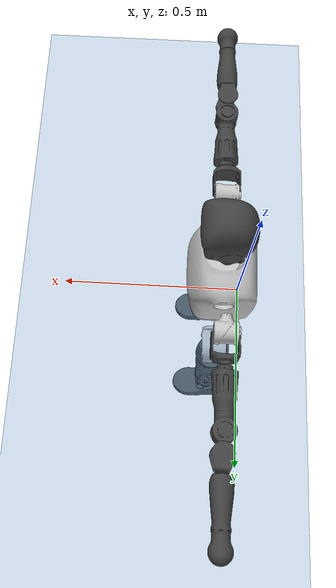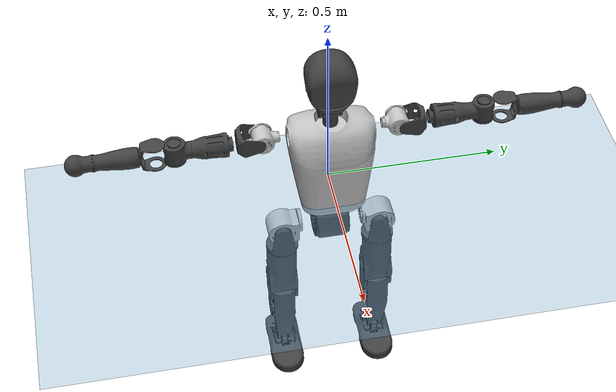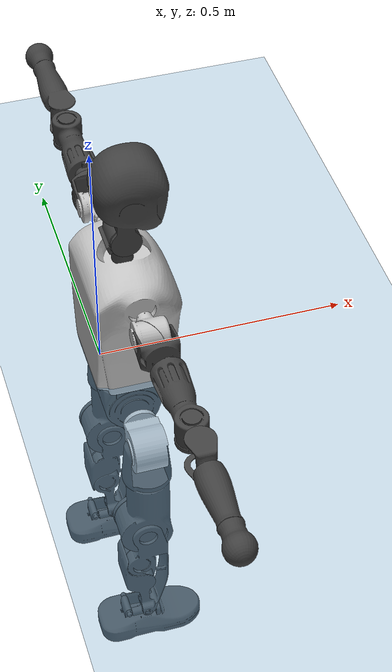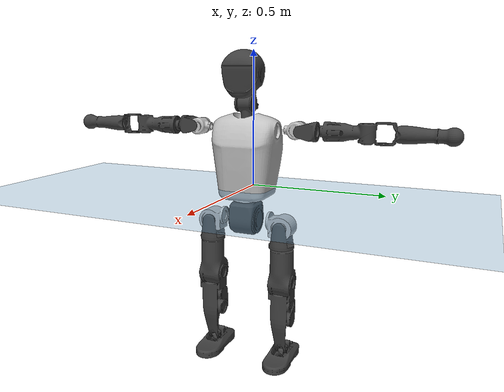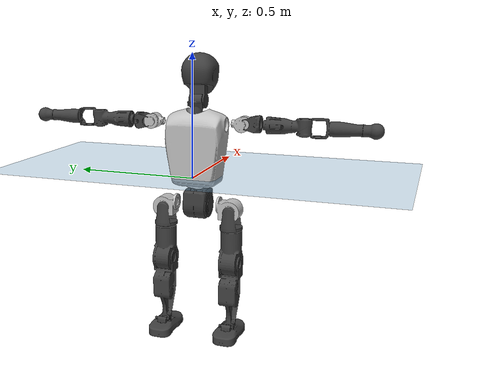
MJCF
<mujoco model="T1">
  <compiler angle="radian" assetdir="assets" balanceinertia="true" inertiafromgeom="false"/>

  <option timestep="0.005" density="1.2" viscosity="2e-05"/>

  <size nkey="1"/>

  <visual>
    <quality shadowsize="8192"/>
    <map shadowclip="0.5"/>
  </visual>

  <default>
    <default class="/">
      <joint armature="0.01" damping="0.01" frictionloss="0.1"/>
      <geom contype="0" conaffinity="0" group="1" solref="-1000 -80"/>
      <site size="0.01 0.005 0.005" group="5"/>
      <general forcelimited="true" biastype="affine" gainprm="25" biasprm="0 -25 -0.6"/>
      <default class="t1">
        <geom rgba="0.25 0.25 0.25 1"/>
        <default class="visual">
          <geom type="mesh" group="2"/>
        </default>
        <default class="collision">
          <geom group="3"/>
        </default>
        <default class="foot">
          <geom size="0.1115 0.05 0.015" type="box" condim="6" group="4" priority="1" solimp="0.015 1 0.015"/>
        </default>
        <default class="reward_collision_sphere">
          <geom group="5" rgba="1 0 0 1"/>
        </default>
      </default>
    </default>
  </default>

  <asset>
    <texture type="skybox" colorspace="auto" name="//unnamed_texture_0" builtin="gradient" rgb1="0.95 0.95 0.95" rgb2="0.95 0.95 0.95" width="100" height="600"/>
    <texture type="2d" colorspace="auto" name="texplane" builtin="checker" rgb1="0.345 0.575 0.748" rgb2="0.345 0.575 0.748" markrgb="1 1 1" width="512" height="512"/>
    <material name="MatPlane" class="/" texture="texplane" texuniform="true" texrepeat="2 2" specular="0.9"/>
    <mesh name="Trunk" class="/" file="Trunk.stl"/>
    <mesh name="H1" class="/" file="H1.stl"/>
    <mesh name="H2" class="/" file="H2.stl"/>
    <mesh name="AL1" class="/" file="AL1.stl"/>
    <mesh name="AL2" class="/" file="AL2.stl"/>
    <mesh name="AL3" class="/" file="AL3.stl"/>
    <mesh name="left_hand_link" class="/" file="left_hand_link.stl"/>
    <mesh name="AR1" class="/" file="AR1.stl"/>
    <mesh name="AR2" class="/" file="AR2.stl"/>
    <mesh name="AR3" class="/" file="AR3.stl"/>
    <mesh name="right_hand_link" class="/" file="right_hand_link.stl"/>
    <mesh name="Waist" class="/" file="Waist.stl"/>
    <mesh name="Hip_Pitch_Left" class="/" file="Hip_Pitch_Left.stl"/>
    <mesh name="Hip_Roll_Left" class="/" file="Hip_Roll_Left.stl"/>
    <mesh name="Hip_Yaw_Left" class="/" file="Hip_Yaw_Left.stl"/>
    <mesh name="Shank_Left" class="/" file="Shank_Left.stl"/>
    <mesh name="Ankle_Cross_Left" class="/" file="Ankle_Cross_Left.stl"/>
    <mesh name="left_foot_link" class="/" file="left_foot_link.stl"/>
    <mesh name="Hip_Pitch_Right" class="/" file="Hip_Pitch_Right.stl"/>
    <mesh name="Hip_Roll_Right" class="/" file="Hip_Roll_Right.stl"/>
    <mesh name="Hip_Yaw_Right" class="/" file="Hip_Yaw_Right.stl"/>
    <mesh name="Shank_Right" class="/" file="Shank_Right.stl"/>
    <mesh name="Ankle_Cross_Right" class="/" file="Ankle_Cross_Right.stl"/>
    <mesh name="right_foot_link" class="/" file="right_foot_link.stl"/>
  </asset>

  <worldbody>
    <geom name="floor" class="/" size="100 100 0.125" type="plane" group="0" material="MatPlane"/>
    <light name="toplight_shadow" class="/" pos="0 0 5" dir="0.0990148 0.0990148 -0.990148" type="directional" ambient="0.04 0.04 0.04" diffuse="0.55 0.55 0.55" specular="0.12 0.12 0.12"/>
    <light name="toplight_fill" class="/" pos="0 0 5" dir="0.0990148 0.0990148 -0.990148" type="directional" castshadow="false" ambient="0.04 0.04 0.04" diffuse="0.3 0.3 0.3" specular="0.08 0.08 0.08"/>
    <body name="trunk" childclass="t1" pos="-5.66402e-05 -0.00269684 -0.00258611" quat="1 0.000396011 0.000273969 -5.39473e-06">
      <inertial pos="0.051115 -0.00146997 0.108185" quat="0.999969 -0.00117162 -0.00170188 0.00756236" mass="14.7543" diaginertia="0.050902 0.354953 0.0602157"/>
      <joint name="//unnamed_joint_0" type="free" armature="0" damping="0" frictionloss="0"/>
      <geom name="//unnamed_geom_1" class="visual" rgba="0.76 0.76 0.76 1" mesh="Trunk"/>
      <geom name="//unnamed_geom_2" class="collision" size="0.0823238 0.109765 0.164648" pos="0.053742 0 0.123447" type="box"/>
      <geom name="//unnamed_geom_3" class="reward_collision_sphere" size="0.12623" pos="0.053742 0 0.102872"/>
      <geom name="//unnamed_geom_4" class="reward_collision_sphere" size="0.0164648" pos="0.053742 0.116325 0"/>
      <geom name="//unnamed_geom_5" class="reward_collision_sphere" size="0.0164648" pos="0.053742 -0.116325 0"/>
      <geom name="//unnamed_geom_6" class="reward_collision_sphere" size="0.0164648" pos="0.053742 0.146433 0.18517"/>
      <geom name="//unnamed_geom_7" class="reward_collision_sphere" size="0.0164648" pos="0.053742 -0.146433 0.18517"/>
      <site name="imu" pos="-0.0125789 -0.0136877 0.0107532" size="0.0109765"/>
      <camera name="track" pos="0 -2.73706 0" quat="0.707107 0.707107 0 0" mode="trackcom"/>
      <camera name="ego_camera" pos="0.109275 0 0.432064" quat="-0.5 -0.5 0.5 0.5"/>
      <body name="H1" pos="0.0525004 -0.000683014 0.250092" quat="1 4.10936e-06 1.45426e-05 1.7345e-06">
        <inertial pos="-0.00049183 -0.00351438 0.0577872" quat="0.762839 -0.0126124 0.00242714 0.646461" mass="0.581607" diaginertia="0.000141381 0.00105783 0.000170597"/>
        <joint name="AAHead_yaw" pos="0 0 0" axis="-0.0110164 -0.00709835 0.999914" range="-1.57081 1.57236" armature="0.0113879" damping="0.0197099" frictionloss="0.120494"/>
        <geom name="//unnamed_geom_8" class="visual" mesh="H1"/>
        <body name="H2" pos="0.00103525 -0.0028265 0.0625314" quat="1 0.000120996 -0.000277742 -0.000175359">
          <inertial pos="0.00353956 0.00191207 0.0988882" quat="0.988259 0.107995 -0.074683 -0.0781278" mass="0.830324" diaginertia="0.00117301 0.00917537 0.00200281"/>
          <joint name="Head_pitch" pos="0 0 0" axis="0.0055287 -0.999965 0.00620243" range="-1.20483 0.342595" armature="0.0110722" damping="0.00928192" frictionloss="0.0978462"/>
          <geom name="//unnamed_geom_9" class="visual" mesh="H2"/>
          <geom name="//unnamed_geom_10" class="collision" size="0.0878121" pos="0.008957 0 0.11316"/>
          <geom name="//unnamed_geom_11" class="reward_collision_sphere" size="0.0987886" pos="0.017914 0 0.102872"/>
        </body>
      </body>
      <body name="AL1" pos="0.0500786 0.145333 0.222889" quat="1 2.08501e-05 0.000422805 -7.51235e-06">
        <inertial pos="-0.000682596 0.0586505 -0.00295219" quat="0.503038 0.495322 -0.50599 0.495564" mass="0.710064" diaginertia="0.000815481 0.00620043 0.00033581"/>
        <joint name="Left_Shoulder_Pitch" pos="0 0 0" axis="-0.000898668 0.999997 -0.00209213" range="-3.26777 1.23527" armature="0.0109927" damping="0" frictionloss="0.109232"/>
        <geom name="//unnamed_geom_12" class="visual" rgba="0.76 0.76 0.76 1" mesh="AL1"/>
        <body name="AL2" pos="0.00132735 0.0652684 -0.00212801" quat="1 -0.000959914 1.66334e-06 0.000143739">
          <inertial pos="0.00326983 0.0506605 0.00246283" quat="0.481605 0.510979 -0.489861 0.516715" mass="0.217647" diaginertia="0.00022708 0.00164919 0.000202143"/>
          <joint name="Left_Shoulder_Roll" pos="0 0 0" axis="-0.999998 0.0016245 0.000810456" range="-1.5753 1.73343" armature="0.0122665" damping="0.0086179" frictionloss="0.100756"/>
          <geom name="//unnamed_geom_13" class="visual" mesh="AL2"/>
          <body name="AL3" pos="-5.89897e-06 0.0811433 0.00296168" quat="1 -0.000438521 0.000128129 -0.000216427">
            <inertial pos="0.00050074 0.116129 -0.00255741" quat="0.70143 0.712695 0.00090508 -0.00783533" mass="1.39143" diaginertia="0.00729148 0.0632317 0.000744822"/>
            <joint name="Left_Elbow_Pitch" pos="0 0 0" axis="0.0080878 -0.999914 -0.0103627" stiffness="0.00896397" range="-2.2534 2.2623" armature="0.0103214" damping="0.0205096" frictionloss="0.114933"/>
            <geom name="//unnamed_geom_14" class="visual" mesh="AL3"/>
            <geom name="//unnamed_geom_15" class="collision" size="0.0329295 0.0823238" pos="0 0.0684265 0" quat="0.707105 0.707108 0 0" type="cylinder"/>
            <geom name="//unnamed_geom_16" class="reward_collision_sphere" size="0.0395154"/>
            <body name="left_hand_link" pos="0.00289767 0.201186 0.00103476" quat="1 8.09169e-05 -0.000501753 -9.04545e-05">
              <inertial pos="-0.00055554 0.14956 0.000115038" quat="0.703951 0.710171 -0.0103458 0.0016653" mass="0.438337" diaginertia="0.00464423 0.0394827 0.000245536"/>
              <joint name="Left_Elbow_Yaw" pos="0 0 0" axis="0.0045794 0.00835253 0.999955" range="-2.43691 0.0146399" armature="0.010801" damping="0.0178358" frictionloss="0.11647"/>
              <geom name="//unnamed_geom_17" class="visual" mesh="left_hand_link"/>
              <geom name="//unnamed_geom_18" class="collision" size="0.0329295 0.0960444" pos="0 0.177909 0" quat="0.707105 0.707108 0 0" type="cylinder"/>
              <geom name="//unnamed_geom_19" class="reward_collision_sphere" size="0.0548825"/>
              <geom name="//unnamed_geom_20" class="reward_collision_sphere" size="0.0384178" pos="0 0.150538 0"/>
              <geom name="//unnamed_geom_21" class="reward_collision_sphere" size="0.0384178" pos="0 0.294234 0"/>
            </body>
          </body>
        </body>
      </body>
      <body name="AR1" pos="0.0546007 -0.145005 0.225549" quat="1 0.000346929 -0.000267183 0.000621256">
        <inertial pos="-0.003167 -0.0617261 0.000361191" quat="0.504828 0.496957 -0.50357 0.49457" mass="0.7309" diaginertia="0.000816886 0.00664114 0.000357165"/>
        <joint name="Right_Shoulder_Pitch" pos="0 0 0" axis="0.0075695 -0.999961 0.00444201" stiffness="0.00118941" range="-1.22913 3.32773" armature="0.0111661" damping="0.00779566" frictionloss="0.114521"/>
        <geom name="//unnamed_geom_22" class="visual" rgba="0.76 0.76 0.76 1" mesh="AR1"/>
        <body name="AR2" pos="0.00119488 -0.063048 0.00279897" quat="1 0.000348996 0.000251584 0.000214647">
          <inertial pos="0.000816911 -0.0503322 0.0017499" quat="0.510229 0.488656 -0.511461 0.489172" mass="0.217993" diaginertia="0.000246182 0.00172739 0.000216159"/>
          <joint name="Right_Shoulder_Roll" pos="0 0 0" axis="-1 -0.000311823 -0.000416854" range="-1.73013 1.58696" armature="0.0110941" damping="0.014953" frictionloss="0.121658"/>
          <geom name="//unnamed_geom_23" class="visual" mesh="AR2"/>
          <body name="AR3" pos="0.00316428 -0.0803031 -0.00292987" quat="0.999999 0.000753261 -0.000258896 0.000994588">
            <inertial pos="0.00224618 -0.116793 -0.0018306" quat="0.712732 0.701386 0.00697503 -0.00470818" mass="1.39557" diaginertia="0.00763285 0.0642602 0.000713186"/>
            <joint name="Right_Elbow_Pitch" pos="0 0 0" axis="-0.00116967 0.999913 0.0131475" range="-2.28393 2.3168" armature="0.0106682" damping="0.0128895" frictionloss="0.117835"/>
            <geom name="//unnamed_geom_24" class="visual" mesh="AR3"/>
            <geom name="//unnamed_geom_25" class="collision" size="0.0329295 0.0823238" pos="0 -0.0684265 0" quat="0.707105 0.707108 0 0" type="cylinder"/>
            <geom name="//unnamed_geom_26" class="reward_collision_sphere" size="0.0395154"/>
            <body name="right_hand_link" pos="-0.000582918 -0.200275 -0.00141664" quat="0.999999 -0.000838599 0.000367569 0.000597737">
              <inertial pos="-0.000615674 -0.148027 0.00330742" quat="0.711397 0.702771 0.00488388 0.00156059" mass="0.433579" diaginertia="0.00495473 0.0411727 0.00024685"/>
              <joint name="Right_Elbow_Yaw" pos="0 0 0" axis="-3.81864e-05 -0.00223637 0.999997" range="0.0398875 2.45786" armature="0.011151" damping="0.00786936" frictionloss="0.106759"/>
              <geom name="//unnamed_geom_27" class="visual" mesh="right_hand_link"/>
              <geom name="//unnamed_geom_28" class="collision" size="0.0329295 0.0960444" pos="0 -0.177909 0" quat="0.707105 0.707108 0 0" type="cylinder"/>
              <geom name="//unnamed_geom_29" class="reward_collision_sphere" size="0.0548825"/>
              <geom name="//unnamed_geom_30" class="reward_collision_sphere" size="0.0384178" pos="0 -0.150538 0"/>
              <geom name="//unnamed_geom_31" class="reward_collision_sphere" size="0.0384178" pos="0 -0.294234 0"/>
            </body>
          </body>
        </body>
      </body>
      <body name="Waist" pos="0.0533121 -0.00295371 -0.1169" quat="0.999999 -0.000964422 -0.000260277 0.00085296">
        <inertial pos="0.00415496 0.00144826 0.0090292" quat="0.983729 -0.000400848 -0.179627 0.00332674" mass="3.24488" diaginertia="0.00305197 0.0249027 0.00547226"/>
        <joint name="Waist" pos="0 0 0" axis="-0.00798858 0.0113288 0.999904" range="-1.62101 1.56137" armature="0.0119248" damping="0.0230181" frictionloss="0.111453"/>
        <geom name="//unnamed_geom_32" class="visual" mesh="Waist"/>
        <body name="Hip_Pitch_Left" pos="0.00134925 0.147047 0.000813725" quat="1 8.30987e-05 0.00088958 -0.000205477">
          <inertial pos="0.000917935 -0.0089248 -0.0167967" quat="0.975001 0.221231 0.0149916 0.0143079" mass="1.33092" diaginertia="0.00103977 0.00713373 0.00143272"/>
          <joint name="Left_Hip_Pitch" pos="0 0 0" axis="-0.00161579 0.999986 0.00505635" stiffness="0.00967361" range="-1.80816 1.56329" armature="0.0105663" damping="0.0237623" frictionloss="0.124429"/>
          <geom name="//unnamed_geom_33" class="visual" rgba="0.76 0.76 0.76 1" mesh="Hip_Pitch_Left"/>
          <body name="Hip_Roll_Left" pos="-0.000711589 -0.00300096 -0.021988" quat="1 0.00037029 7.80179e-05 -0.000169471">
            <inertial pos="-0.00174842 -0.000670522 -0.0524249" quat="0.708656 -0.00553549 -0.00161632 0.705531" mass="0.531633" diaginertia="0.00102544 0.00777508 0.000614799"/>
            <joint name="Left_Hip_Roll" pos="0 0 0" axis="-0.999997 -0.000595367 -0.00220154" range="-1.56901 0.234252" armature="0.010848" damping="0" frictionloss="0.0958842"/>
            <geom name="//unnamed_geom_34" class="visual" mesh="Hip_Roll_Left"/>
            <geom name="//unnamed_geom_35" class="reward_collision_sphere" size="0.0603708"/>
            <body name="Hip_Yaw_Left" pos="-0.00220499 0.00101864 -0.0867237" quat="1 -0.000357213 0.000215543 0.000307844">
              <inertial pos="-0.00693448 0.00240301 -0.0933656" quat="0.697558 -0.032662 -0.0303744 0.715139" mass="2.81589" diaginertia="0.0150824 0.123945 0.00303955"/>
              <joint name="Left_Hip_Yaw" pos="0 0 0" axis="-0.000909193 -0.00233021 -0.999997" range="-1.0573 1.00725" armature="0.0105686" damping="0" frictionloss="0.110261"/>
              <geom name="//unnamed_geom_36" class="visual" mesh="Hip_Yaw_Left"/>
              <geom name="//unnamed_geom_37" class="collision" size="0.0548825 0.0878121" type="cylinder"/>
              <body name="Shank_Left" pos="-0.0139575 7.2454e-05 -0.134097" quat="1 8.90464e-05 -0.000195983 -4.0032e-05">
                <inertial pos="-0.00700155 0.00101675 -0.127746" quat="0.997628 0.00261819 -0.0234336 0.0646642" mass="2.36893" diaginertia="0.0203194 0.166719 0.00222256"/>
                <joint name="Left_Knee_Pitch" pos="0 0 0" axis="0.00959604 0.999936 -0.00600109" stiffness="0.00794947" range="0.0525429 2.28358" armature="0.0107947" damping="0.013973" frictionloss="0.0995214"/>
                <geom name="//unnamed_geom_38" class="visual" mesh="Shank_Left"/>
                <geom name="//unnamed_geom_39" class="collision" size="0.0548825 0.0823238" pos="0 0 -0.123447" type="cylinder"/>
                <geom name="//unnamed_geom_40" class="reward_collision_sphere" size="0.0713473"/>
                <body name="Ankle_Cross_Left" pos="0.00216279 0.000417054 -0.288169" quat="1 -4.10073e-06 -0.000245016 -8.51282e-05">
                  <inertial pos="-0.00592061 0.00169506 -0.0056572" quat="0.444353 0.545914 0.555961 0.442081" mass="0.0977533" diaginertia="1.68264e-05 0.000119453 1.30209e-05"/>
                  <joint name="Left_Ankle_Pitch" pos="0 0 0" axis="6.42275e-05 1 -0.000147221" range="-0.876336 0.375598" armature="0.00965618" damping="0" frictionloss="0.123108"/>
                  <geom name="//unnamed_geom_41" class="visual" mesh="Ankle_Cross_Left"/>
                  <body name="left_foot_link" pos="-0.00414766 -0.00180039 -0.0136358" quat="0.999999 -2.71423e-05 -0.00130839 0.000128168">
                    <inertial pos="-0.00169122 -0.000310481 -0.0102746" quat="0.00839087 0.623664 0.00822162 0.781604" mass="0.894865" diaginertia="0.00154609 0.0117392 0.00244916"/>
                    <joint name="Left_Ankle_Roll" pos="0 0 0" axis="-0.999992 -0.000127061 0.00396346" range="-0.443546 0.43949" armature="0.0111668" damping="0" frictionloss="0.108162"/>
                    <geom name="//unnamed_geom_42" class="visual" mesh="left_foot_link"/>
                    <geom name="left_foot" class="foot" size="0.119708 0.0469753 0.0158992" pos="0.008957 0 -0.0154308"/>
                    <geom name="//unnamed_geom_44" class="reward_collision_sphere" size="0.0570778" pos="0.008957 0 -0.0154308"/>
                    <geom name="//unnamed_geom_45" class="reward_collision_sphere" size="0.0329295" pos="0.0850915 -0.0314762 -0.0154308"/>
                    <geom name="//unnamed_geom_46" class="reward_collision_sphere" size="0.0329295" pos="-0.062699 -0.0314762 -0.0154308"/>
                    <site name="left_foot" class="foot" pos="0.008957 0 -0.0154308" size="0.0109765"/>
                  </body>
                </body>
              </body>
            </body>
          </body>
        </body>
        <body name="Hip_Pitch_Right" pos="-0.00017675 -0.142708 0.00264208" quat="1 9.50217e-05 3.89809e-05 1.96505e-05">
          <inertial pos="-0.000721087 0.0077792 -0.0180841" quat="0.970927 -0.238904 0.012439 -0.00843318" mass="1.37756" diaginertia="0.00106323 0.00698937 0.00150824"/>
          <joint name="Right_Hip_Pitch" pos="0 0 0" axis="0.000820602 -0.999983 0.00582819" stiffness="0.00715306" range="-1.5718 1.82605" armature="0.00984751" damping="0.0127434" frictionloss="0.111437"/>
          <geom name="//unnamed_geom_47" class="visual" rgba="0.76 0.76 0.76 1" mesh="Hip_Pitch_Right"/>
          <body name="Hip_Roll_Right" pos="-0.00106037 -0.00131415 -0.0211464" quat="0.999999 -0.000566103 -0.00132901 0.000238315">
            <inertial pos="0.00110182 0.00264089 -0.0530088" quat="0.710515 -0.00646084 -0.0049456 0.703635" mass="0.489406" diaginertia="0.00100094 0.00729416 0.000587991"/>
            <joint name="Right_Hip_Roll" pos="0 0 0" axis="-1 -0.00077264 -0.000470169" stiffness="0.000700317" range="-0.23617 1.52558" armature="0.0111905" damping="0.0122937" frictionloss="0.124178"/>
            <geom name="//unnamed_geom_48" class="visual" mesh="Hip_Roll_Right"/>
            <geom name="//unnamed_geom_49" class="reward_collision_sphere" size="0.0603708"/>
            <body name="Hip_Yaw_Right" pos="-0.00186853 -0.00231175 -0.0829587" quat="1 -0.000121271 -0.000104299 8.35068e-06">
              <inertial pos="-0.00721947 -0.00271783 -0.0913058" quat="0.707824 -0.03749 -0.0409403 0.704204" mass="3.01124" diaginertia="0.0151147 0.128848 0.00298013"/>
              <joint name="Right_Hip_Yaw" pos="0 0 0" axis="-0.00461324 0.00856319 -0.999953" range="-0.988577 1.04263" armature="0.0112585" damping="0.0190297" frictionloss="0.10945"/>
              <geom name="//unnamed_geom_50" class="visual" mesh="Hip_Yaw_Right"/>
              <geom name="//unnamed_geom_51" class="collision" size="0.0548825 0.0878121" type="cylinder"/>
              <body name="Shank_Right" pos="-0.0133571 -5.07076e-05 -0.13784" quat="0.999999 0.00119525 4.84958e-05 0.00012845">
                <inertial pos="-0.00629409 -0.000736327 -0.127447" quat="0.99926 -0.000191141 -0.0235468 -0.0304005" mass="2.33067" diaginertia="0.01929 0.159051 0.00224157"/>
                <joint name="Right_Knee_Pitch" pos="0 0 0" axis="0.00167162 -0.999988 0.00462256" stiffness="0.00692909" range="-2.34538 0.0453143" armature="0.010472" damping="0.017937" frictionloss="0.108177"/>
                <geom name="//unnamed_geom_52" class="visual" mesh="Shank_Right"/>
                <geom name="//unnamed_geom_53" class="collision" size="0.0548825 0.0823238" pos="0 0 -0.123447" type="cylinder"/>
                <geom name="//unnamed_geom_54" class="reward_collision_sphere" size="0.0713473"/>
                <body name="Ankle_Cross_Right" pos="-0.00170731 0.00186284 -0.2856" quat="1 0.000254141 3.66571e-05 -0.000252492">
                  <inertial pos="-0.00275051 -0.00202157 -0.00812333" quat="0.439021 0.542278 0.559274 0.44767" mass="0.10247" diaginertia="1.68189e-05 0.000124389 1.39123e-05"/>
                  <joint name="Right_Ankle_Pitch" pos="0 0 0" axis="0.00589518 -0.999925 -0.0106987" range="-0.361884 0.861709" armature="0.0108859" damping="0.0124088" frictionloss="0.0999518"/>
                  <geom name="//unnamed_geom_55" class="visual" mesh="Ankle_Cross_Right"/>
                  <body name="right_foot_link" pos="-0.000228379 -0.000306374 -0.013675" quat="1 -3.566e-05 1.94023e-05 3.52163e-05">
                    <inertial pos="0.00105898 -0.0019343 -0.00887203" quat="0.000324205 0.620602 -5.93586e-05 0.784126" mass="0.900538" diaginertia="0.00153324 0.0111135 0.00247871"/>
                    <joint name="Right_Ankle_Roll" pos="0 0 0" axis="-0.999961 0.00388045 0.00797311" range="-0.424841 0.440617" armature="0.0110336" damping="0.011045" frictionloss="0.114021"/>
                    <geom name="//unnamed_geom_56" class="visual" mesh="right_foot_link"/>
                    <geom name="right_foot" class="foot" size="0.103872 0.0467778 0.0148303" pos="0.008957 0 -0.0154308"/>
                    <geom name="//unnamed_geom_58" class="reward_collision_sphere" size="0.043906"/>
                    <geom name="//unnamed_geom_59" class="reward_collision_sphere" size="0.0329295" pos="0.008957 0 -0.0154308"/>
                    <geom name="//unnamed_geom_60" class="reward_collision_sphere" size="0.0329295" pos="0.0850915 0.0314762 -0.0154308"/>
                    <geom name="//unnamed_geom_61" class="reward_collision_sphere" size="0.0329295" pos="-0.062699 0.0314762 -0.0154308"/>
                    <site name="right_foot" class="foot" pos="0.008957 0 -0.0154308" size="0.0109765"/>
                  </body>
                </body>
              </body>
            </body>
          </body>
        </body>
      </body>
    </body>
  </worldbody>

  <contact>
    <pair class="/" geom1="floor" geom2="left_foot" name="//unnamed_contact_0"/>
    <pair class="/" geom1="floor" geom2="right_foot" name="//unnamed_contact_1"/>
  </contact>

  <actuator>
    <general name="AAHead_yaw" class="/" joint="AAHead_yaw" forcerange="-8.37232 8.37232" gainprm="26.2141" biasprm="0 -26.2141 -0.620395"/>
    <general name="Head_pitch" class="/" joint="Head_pitch" forcerange="-7.62984 7.62984" gainprm="26.2141" biasprm="0 -26.2141 -0.620395"/>
    <general name="Left_Shoulder_Pitch" class="/" joint="Left_Shoulder_Pitch" forcerange="-17.7663 17.7663" gainprm="26.2141" biasprm="0 -26.2141 -0.620395"/>
    <general name="Left_Shoulder_Roll" class="/" joint="Left_Shoulder_Roll" forcerange="-17.7252 17.7252" gainprm="26.2141" biasprm="0 -26.2141 -0.620395"/>
    <general name="Left_Elbow_Pitch" class="/" joint="Left_Elbow_Pitch" forcerange="-20.2743 20.2743" gainprm="26.2141" biasprm="0 -26.2141 -0.620395"/>
    <general name="Left_Elbow_Yaw" class="/" joint="Left_Elbow_Yaw" forcerange="-18.0306 18.0306" gainprm="26.2141" biasprm="0 -26.2141 -0.620395"/>
    <general name="Right_Shoulder_Pitch" class="/" joint="Right_Shoulder_Pitch" forcerange="-21.9808 21.9808" gainprm="26.2141" biasprm="0 -26.2141 -0.620395"/>
    <general name="Right_Shoulder_Roll" class="/" joint="Right_Shoulder_Roll" forcerange="-17.8456 17.8456" gainprm="26.2141" biasprm="0 -26.2141 -0.620395"/>
    <general name="Right_Elbow_Pitch" class="/" joint="Right_Elbow_Pitch" forcerange="-19.4694 19.4694" gainprm="26.2141" biasprm="0 -26.2141 -0.620395"/>
    <general name="Right_Elbow_Yaw" class="/" joint="Right_Elbow_Yaw" forcerange="-21.6081 21.6081" gainprm="26.2141" biasprm="0 -26.2141 -0.620395"/>
    <general name="Waist" class="/" joint="Waist" forcerange="-36.6813 36.6813" gainprm="26.2141" biasprm="0 -26.2141 -0.620395"/>
    <general name="Left_Hip_Pitch" class="/" joint="Left_Hip_Pitch" forcerange="-47.5043 47.5043" gainprm="26.2141" biasprm="0 -26.2141 -0.620395"/>
    <general name="Left_Hip_Roll" class="/" joint="Left_Hip_Roll" forcerange="-34.6686 34.6686" gainprm="26.2141" biasprm="0 -26.2141 -0.620395"/>
    <general name="Left_Hip_Yaw" class="/" joint="Left_Hip_Yaw" forcerange="-31.7529 31.7529" gainprm="26.2141" biasprm="0 -26.2141 -0.620395"/>
    <general name="Left_Knee_Pitch" class="/" joint="Left_Knee_Pitch" forcerange="-67.0188 67.0188" gainprm="26.2141" biasprm="0 -26.2141 -0.620395"/>
    <general name="Left_Ankle_Pitch" class="/" joint="Left_Ankle_Pitch" forcerange="-22.4532 22.4532" gainprm="26.2141" biasprm="0 -26.2141 -0.620395"/>
    <general name="Left_Ankle_Roll" class="/" joint="Left_Ankle_Roll" forcerange="-16.7096 16.7096" gainprm="26.2141" biasprm="0 -26.2141 -0.620395"/>
    <general name="Right_Hip_Pitch" class="/" joint="Right_Hip_Pitch" forcerange="-49.194 49.194" gainprm="26.2141" biasprm="0 -26.2141 -0.620395"/>
    <general name="Right_Hip_Roll" class="/" joint="Right_Hip_Roll" forcerange="-31.9239 31.9239" gainprm="26.2141" biasprm="0 -26.2141 -0.620395"/>
    <general name="Right_Hip_Yaw" class="/" joint="Right_Hip_Yaw" forcerange="-31.9924 31.9924" gainprm="26.2141" biasprm="0 -26.2141 -0.620395"/>
    <general name="Right_Knee_Pitch" class="/" joint="Right_Knee_Pitch" forcerange="-65.5481 65.5481" gainprm="26.2141" biasprm="0 -26.2141 -0.620395"/>
    <general name="Right_Ankle_Pitch" class="/" joint="Right_Ankle_Pitch" forcerange="-20.7453 20.7453" gainprm="26.2141" biasprm="0 -26.2141 -0.620395"/>
    <general name="Right_Ankle_Roll" class="/" joint="Right_Ankle_Roll" forcerange="-14.9795 14.9795" gainprm="26.2141" biasprm="0 -26.2141 -0.620395"/>
  </actuator>

  <sensor>
    <gyro site="imu" name="imu_angular_velocity"/>
    <velocimeter site="imu" name="imu_linear_velocity"/>
    <framelinvel objtype="site" objname="left_foot" name="left_foot_global_linear_velocity"/>
    <framelinvel objtype="site" objname="right_foot" name="right_foot_global_linear_velocity"/>
  </sensor>

  <keyframe>
    <key name="home" qpos="0 0 0.6385 1 0 0 0 0 0 0 1.4 0 -0.4 0 -1.4 0 0.4 0 -0.4 0 0 0.8 -0.4 0 0.4 0 0 -0.8 0.4 0"/>
  </keyframe>
</mujoco>
